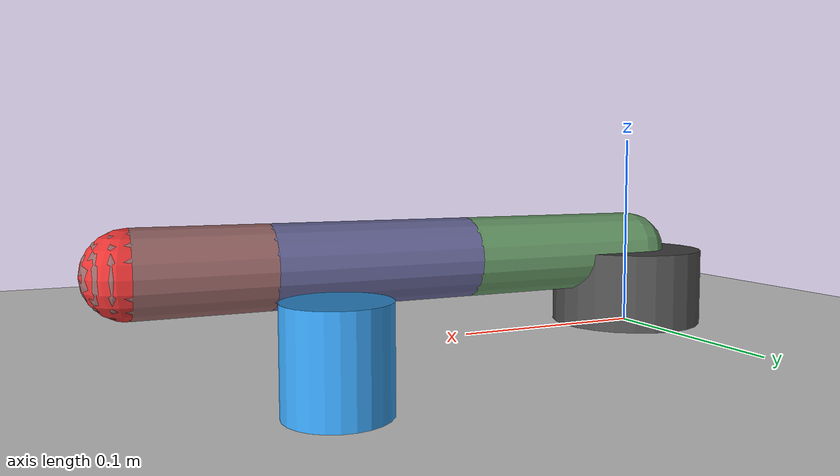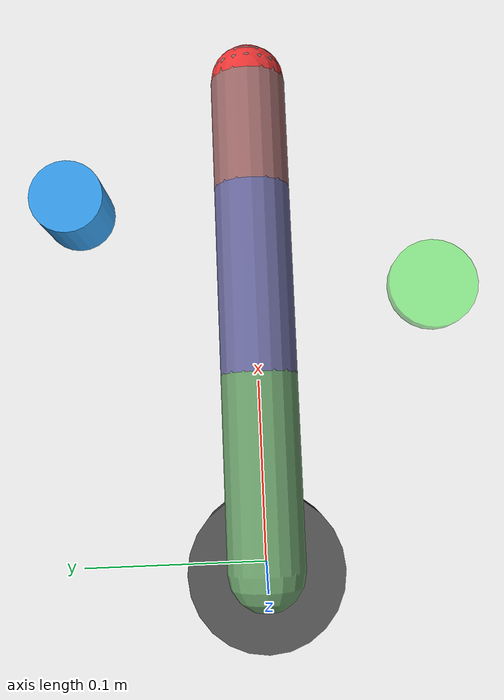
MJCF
<mujoco model="pusher">
  <option timestep="0.02" gravity="0 0 -9.81"/>

  <default>
    <joint damping="0.5" limited="true"/>
    <geom contype="1" conaffinity="1" condim="3" friction="1.0 0.5 0.5"/>
  </default>

  <worldbody>
    <light diffuse="0.8 0.8 0.8" pos="0 0 2" dir="0 0 -1"/>
    <geom type="plane" size="2 2 0.01" rgba="0.9 0.9 0.9 1"/>

    <!-- Robot arm base -->
    <body name="base" pos="0 0 0.02">
      <geom type="cylinder" size="0.04 0.02" rgba="0.3 0.3 0.3 1" contype="0" conaffinity="0"/>

      <!-- Link 1 -->
      <body name="link1" pos="0 0 0.02">
        <joint name="joint0" type="hinge" axis="0 0 1" range="-2.3 2.3"/>
        <geom type="capsule" fromto="0 0 0  0.1 0 0" size="0.02" mass="0.5" rgba="0.4 0.6 0.4 1"/>

        <!-- Link 2 -->
        <body name="link2" pos="0.1 0 0">
          <joint name="joint1" type="hinge" axis="0 0 1" range="-2.3 2.3"/>
          <geom type="capsule" fromto="0 0 0  0.1 0 0" size="0.02" mass="0.5" rgba="0.4 0.4 0.6 1"/>

          <!-- Link 3 -->
          <body name="link3" pos="0.1 0 0">
            <joint name="joint2" type="hinge" axis="0 0 1" range="-2.3 2.3"/>
            <geom type="capsule" fromto="0 0 0  0.06 0 0" size="0.02" mass="0.3" rgba="0.6 0.4 0.4 1"/>

            <!-- Fingertip -->
            <body name="fingertip" pos="0.06 0 0">
              <geom name="fingertip" type="sphere" size="0.02" rgba="0.9 0.2 0.2 1"/>
            </body>
          </body>
        </body>
      </body>
    </body>

    <!-- Object to push -->
    <body name="object" pos="0.2 0.1 0.02">
      <joint name="obj_slidex" type="slide" axis="1 0 0" limited="false"/>
      <joint name="obj_slidey" type="slide" axis="0 1 0" limited="false"/>
      <geom name="object" type="cylinder" size="0.02 0.02" mass="0.1" rgba="0.2 0.6 0.9 1"/>
    </body>

    <!-- Target position -->
    <body name="target" pos="0.15 -0.1 0.01">
      <geom name="target" type="cylinder" size="0.025 0.005" rgba="0.2 0.9 0.2 0.5" contype="0" conaffinity="0"/>
    </body>
  </worldbody>

  <actuator>
    <motor joint="joint0" gear="50" ctrlrange="-2 2" ctrllimited="true"/>
    <motor joint="joint1" gear="50" ctrlrange="-2 2" ctrllimited="true"/>
    <motor joint="joint2" gear="50" ctrlrange="-2 2" ctrllimited="true"/>
    <motor joint="obj_slidex" gear="20" ctrlrange="-1 1" ctrllimited="true"/>
    <motor joint="obj_slidey" gear="20" ctrlrange="-1 1" ctrllimited="true"/>
  </actuator>
</mujoco>
